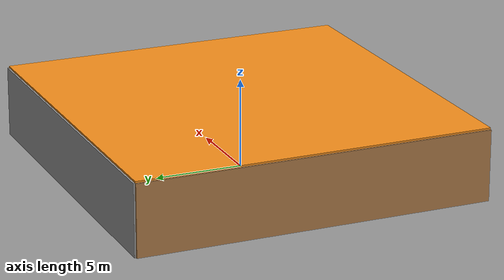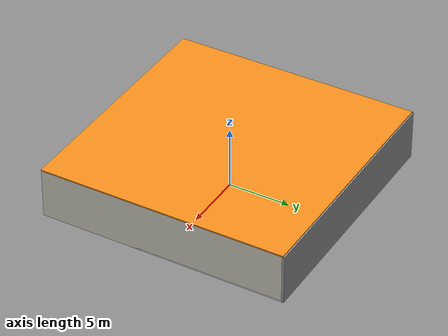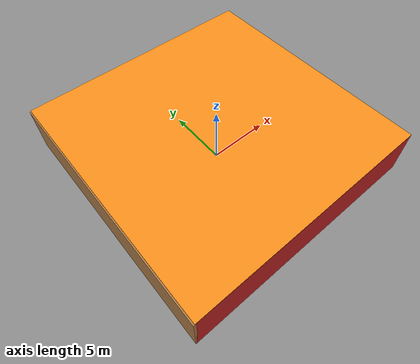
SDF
<sdf version="1.4">
 <world name="default">
  <physics type="ode">
   <max_step_size>0.001</max_step_size>
   <real_time_factor>1</real_time_factor>
   <real_time_update_rate>1000</real_time_update_rate>
   <gravity>0 0 -9.8</gravity>
  </physics>
  <scene><ambient>0.4 0.4 0.4 1</ambient><background>0.7 0.7 0.7 1</background><shadows>1</shadows></scene>
  <model name="Surrounding">
   <static>1</static>
   <link name="Ceiling">
    <collision name="Ceiling_Collision"><geometry><box><size>20 20 0.1</size></box></geometry></collision>
    <visual name="Ceiling_Visual">
     <geometry><box><size>20 20 0.1</size></box></geometry>
     <material>
      <script><uri>file://media/materials/scripts/gazebo.material</uri><name>Gazebo/Orange</name></script>
     </material>
    </visual>
    <pose>0 0 4.05 0 0 0</pose>
   </link>
   <link name="Wall_South">
    <collision name="Wall_South_Collision">
     <geometry><box><size>20 0 4</size></box></geometry>
     <pose>0 0 2 0 -0 0</pose>
    </collision>
    <visual name="Wall_South_Visual">
     <pose>0 0 2 0 -0 0</pose>
     <geometry><box><size>20 0 4</size></box></geometry>
     <material>
      <script><uri>file://media/materials/scripts/gazebo.material</uri><name>Gazebo/Red</name></script>
     </material>
    </visual>
    <velocity_decay><linear>0</linear><angular>0</angular></velocity_decay>
    <pose>0 -10 0 0 -0 0</pose>
   </link>
   <link name="Wall_East">
    <collision name="Wall_21_Collision">
     <geometry><box><size>20 0 4</size></box></geometry>
     <pose>0 0 2 0 -0 0</pose>
    </collision>
    <visual name="Wall_21_Visual">
     <pose>0 0 2 0 -0 0</pose>
     <geometry><box><size>20 0 4</size></box></geometry>
     <material>
      <script><uri>file://media/materials/scripts/gazebo.material</uri><name>Gazebo/PaintedWall</name></script>
     </material>
    </visual>
    <velocity_decay><linear>0</linear><angular>0</angular></velocity_decay>
    <pose>10 0 0 0 -0 1.5708</pose>
   </link>
   <link name="Wall_North">
    <collision name="Wall_22_Collision">
     <geometry><box><size>20 0.2 4</size></box></geometry>
     <pose>0 0 2 0 -0 0</pose>
    </collision>
    <visual name="Wall_22_Visual">
     <pose>0 0 2 0 -0 0</pose>
     <geometry><box><size>20 0.2 4</size></box></geometry>
     <material>
      <script><uri>file://media/materials/scripts/gazebo.material</uri><name>Gazebo/Grey</name></script>
     </material>
    </visual>
    <velocity_decay><linear>0</linear><angular>0</angular></velocity_decay>
    <pose>0 10 0 0 -0 0</pose>
   </link>
   <link name="Wall_West">
    <collision name="Wall_23_Collision">
     <geometry><box><size>20 0.2 4</size></box></geometry>
     <pose>0 0 2 0 -0 0</pose>
    </collision>
    <visual name="Wall_23_Visual">
     <pose>0 0 2 0 -0 0</pose>
     <geometry><box><size>20 0.2 4</size></box></geometry>
     <material>
      <script><uri>file://media/materials/scripts/gazebo.material</uri><name>Gazebo/WoodPallet</name></script>
     </material>
    </visual>
    <velocity_decay><linear>0</linear><angular>0</angular></velocity_decay>
    <pose>-10 0 0 0 0 -1.5708</pose>
   </link>
   <link name="Ground_link">
    <collision name="collision">
     <pose>0 0 .05 0 -0 0</pose>
     <geometry><box><size>20 20 0.1</size></box></geometry>
    </collision>
    <visual name="visual">
     <pose>0 0 .05 0 -0 0</pose>
     <geometry><box><size>20 20 0.1</size></box></geometry>
     <material>
      <script><uri>file://media/materials/scripts/gazebo.material</uri><name>Gazebo/WhiteGlow</name></script>
     </material>
    </visual>
   </link>
   <static>1</static>
  </model>
  <spherical_coordinates>
   <surface_model>EARTH_WGS84</surface_model>
   <latitude_deg>0</latitude_deg>
   <longitude_deg>0</longitude_deg>
   <elevation>0</elevation>
   <heading_deg>0</heading_deg>
  </spherical_coordinates>
  <light name="lightball_0" type="diffuse">
   <diffuse>0.8 0.8 0.8 1</diffuse>
   <specular>0.2 0.2 0.2 1</specular>
   <attenuation>
    <range>100</range>
    <constant>0.7</constant>
    <linear>0.01</linear>
    <quadratic>0.001</quadratic>
   </attenuation>
   <direction>-0.5 0.1 -0.9</direction>
   <pose>0.799895522027 0.393418901063 0.893536986812 0 0 0</pose>
  </light>
  <light name="lightball_1" type="diffuse">
   <diffuse>0.8 0.8 0.8 1</diffuse>
   <specular>0.2 0.2 0.2 1</specular>
   <attenuation>
    <range>100</range>
    <constant>0.7</constant>
    <linear>0.01</linear>
    <quadratic>0.001</quadratic>
   </attenuation>
   <direction>-0.5 0.1 -0.9</direction>
   <pose>-9.90488497023 -5.34471530001 0.907581576882 0 0 0</pose>
  </light>
  <light name="lightball_2" type="diffuse">
   <diffuse>0.8 0.8 0.8 1</diffuse>
   <specular>0.2 0.2 0.2 1</specular>
   <attenuation>
    <range>100</range>
    <constant>0.7</constant>
    <linear>0.01</linear>
    <quadratic>0.001</quadratic>
   </attenuation>
   <direction>-0.5 0.1 -0.9</direction>
   <pose>9.48303060015 -2.10783365191 1.33652846119 0 0 0</pose>
  </light>
  <light name="lightball_3" type="diffuse">
   <diffuse>0.8 0.8 0.8 1</diffuse>
   <specular>0.2 0.2 0.2 1</specular>
   <attenuation>
    <range>100</range>
    <constant>0.7</constant>
    <linear>0.01</linear>
    <quadratic>0.001</quadratic>
   </attenuation>
   <direction>-0.5 0.1 -0.9</direction>
   <pose>-1.30033442963 2.16837304081 1.4267631625 0 0 0</pose>
  </light>
  <light name="lightball_4" type="diffuse">
   <diffuse>0.8 0.8 0.8 1</diffuse>
   <specular>0.2 0.2 0.2 1</specular>
   <attenuation>
    <range>100</range>
    <constant>0.7</constant>
    <linear>0.01</linear>
    <quadratic>0.001</quadratic>
   </attenuation>
   <direction>-0.5 0.1 -0.9</direction>
   <pose>-0.898907919143 -6.70601428824 0.592955548841 0 0 0</pose>
  </light>
  <light name="lightball_5" type="diffuse">
   <diffuse>0.8 0.8 0.8 1</diffuse>
   <specular>0.2 0.2 0.2 1</specular>
   <attenuation>
    <range>100</range>
    <constant>0.7</constant>
    <linear>0.01</linear>
    <quadratic>0.001</quadratic>
   </attenuation>
   <direction>-0.5 0.1 -0.9</direction>
   <pose>-3.74516616829 -1.25264518142 3.31960047404 0 0 0</pose>
  </light>
  <light name="lightball_6" type="diffuse">
   <diffuse>0.8 0.8 0.8 1</diffuse>
   <specular>0.2 0.2 0.2 1</specular>
   <attenuation>
    <range>100</range>
    <constant>0.7</constant>
    <linear>0.01</linear>
    <quadratic>0.001</quadratic>
   </attenuation>
   <direction>-0.5 0.1 -0.9</direction>
   <pose>-3.31206958304 -5.15220456661 1.57505146117 0 0 0</pose>
  </light>
  <include>
   <uri>model://construction_cone</uri>
   <pose>-6.80476010892 3.35318030374 0 0 0 2.05408724074</pose>
  </include>
  <include>
   <uri>model://textured_shapes</uri>
   <pose>-5.12969724128 -3.68163551123 0 0 0 0.0654993600743</pose>
  </include>
  <include>
   <uri>model://textured_shapes</uri>
   <pose>-2.64995609768 -4.2513166532 0 0 0 2.39229731123</pose>
  </include>
  <include>
   <uri>model://textured_shapes</uri>
   <pose>-0.81105299879 1.67031787735 0 0 0 2.8296027994</pose>
  </include>
  <include>
   <uri>model://textured_shapes</uri>
   <pose>2.10798958002 4.68218204329 0 0 0 0.750122821653</pose>
  </include>
 </world>
</sdf>

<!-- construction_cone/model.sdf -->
<sdf version="1.5">
  <model name="Construction Cone">
    <link name="link">
      <collision name="collision">
        <geometry>
          <mesh>
            <scale>10 10 10</scale>
            <uri>file://isr-testbed/construction_cone/meshes/construction_cone.dae</uri>
          </mesh>
        </geometry>
      </collision>
      <visual name="visual">
        <geometry>
          <mesh>
            <scale>10 10 10</scale>
            <uri>file://isr-testbed/construction_cone/meshes/construction_cone.dae</uri>
          </mesh>
        </geometry>
      </visual>
    </link>
  </model>
</sdf>

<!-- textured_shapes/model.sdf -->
<sdf version="1.6">
  <model name="textured_shapes">
    <pose>0 0 0.5 0 0 0</pose>
    <link name="box">
      <pose>0 -1.5 0 0 0 0</pose>
      <collision name="collision">
        <geometry>
          <box>
            <size>1 1 1</size>
          </box>
        </geometry>
      </collision>
      <visual name="visual">
        <geometry>
          <box>
            <size>1 1 1</size>
          </box>
        </geometry>
        <material>
          <script>
            <uri>model://../model_source/models/textured_shapes/materials/scripts</uri>
            <uri>model://../model_source/models/textured_shapes/materials/textures</uri>
            <name>TexturedShape/Squares</name>
          </script>
        </material>
      </visual>
    </link>
    <link name="sphere">
      <collision name="collision">
        <geometry>
          <sphere>
            <radius>0.5</radius>
          </sphere>
        </geometry>
      </collision>
      <visual name="visual">
        <geometry>
          <sphere>
            <radius>0.5</radius>
          </sphere>
        </geometry>
        <material>
          <script>
            <uri>model://../model_source/models/textured_shapes/materials/scripts</uri>
            <uri>model://../model_source/models/textured_shapes/materials/textures</uri>
            <name>TexturedShape/Squares</name>
          </script>
        </material>
      </visual>
    </link>
    <link name="cylinder">
      <pose>0 1.5 0 0 0 0</pose>
      <collision name="collision">
        <geometry>
          <cylinder>
            <radius>0.5</radius>
            <length>1</length>
          </cylinder>
        </geometry>
      </collision>
      <visual name="visual">
        <geometry>
          <cylinder>
            <radius>0.5</radius>
            <length>1</length>
          </cylinder>
        </geometry>
        <material>
          <script>
            <uri>model://../model_source/models/textured_shapes/materials/scripts</uri>
            <uri>model://../model_source/models/textured_shapes/materials/textures</uri>
            <name>TexturedShape/Squares</name>
          </script>
        </material>
      </visual>
    </link>
  </model>
</sdf>
